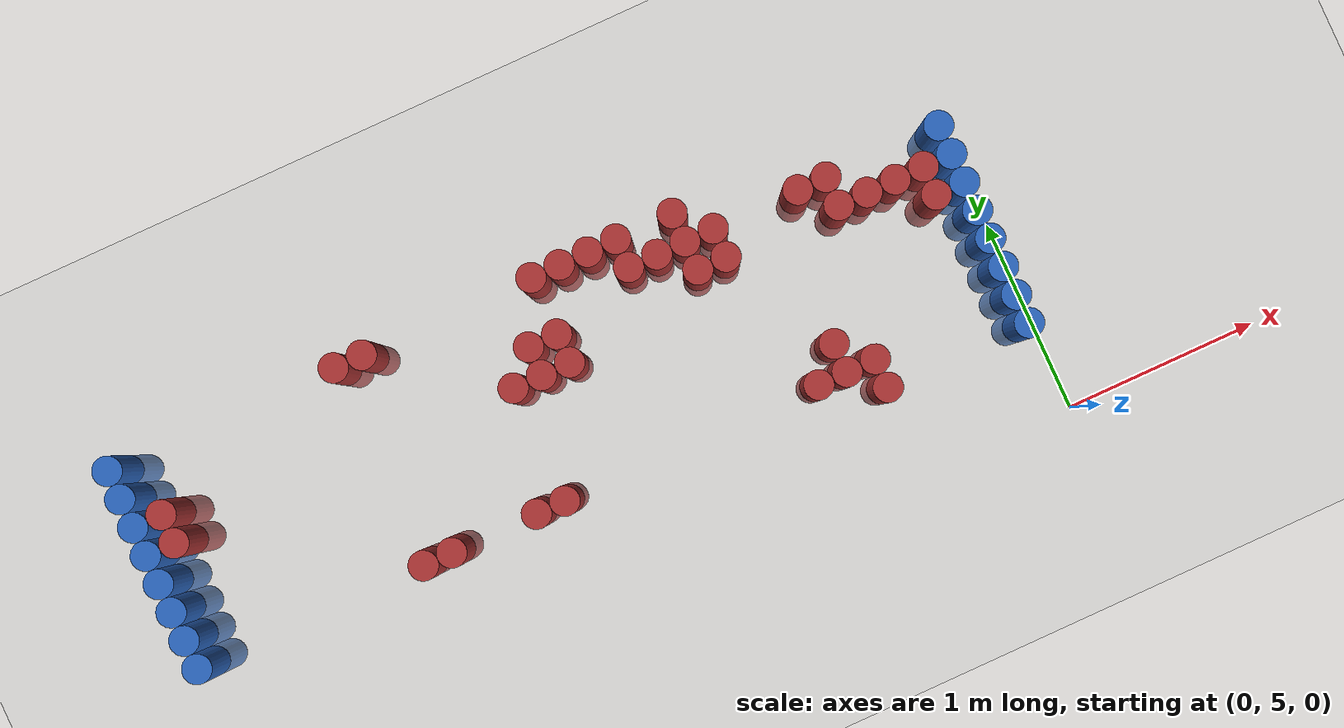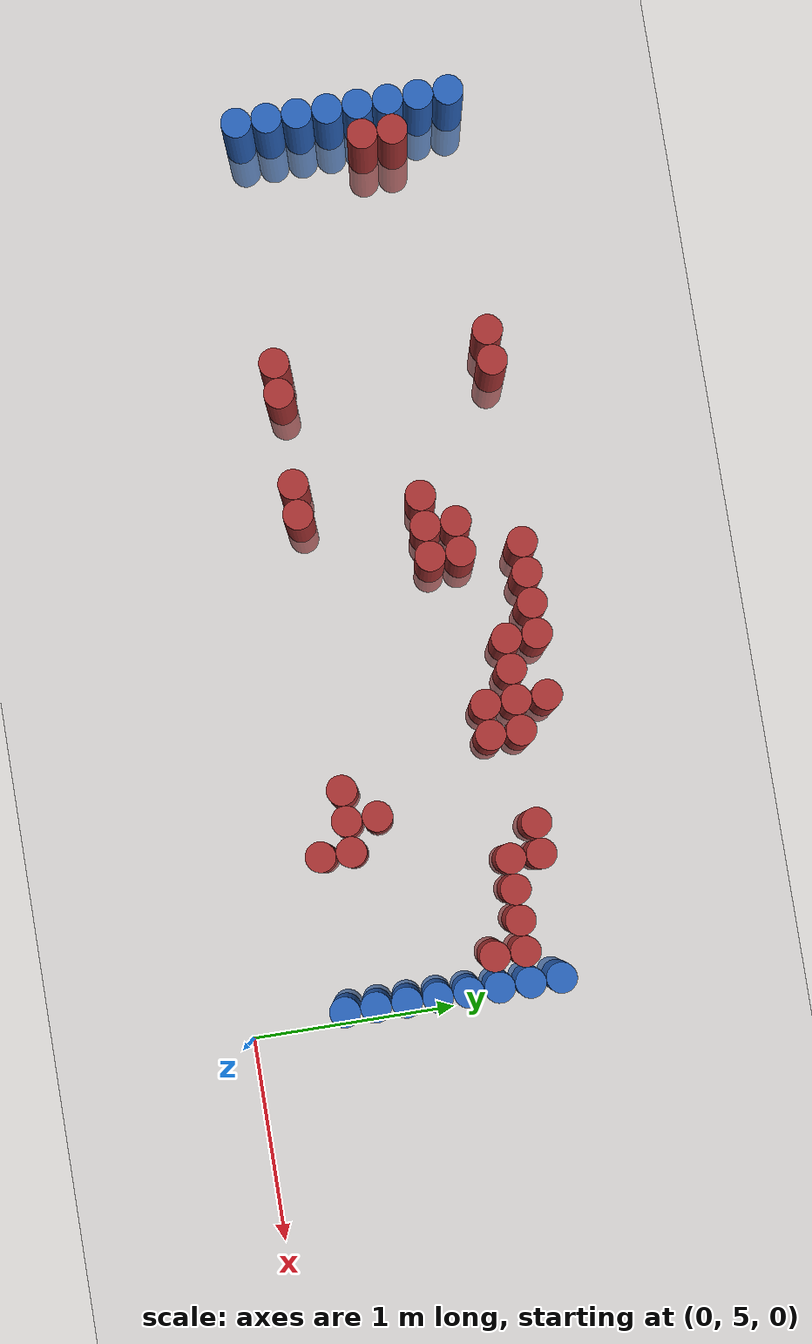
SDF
<sdf version="1.6">
 <world name="default">
  <model name="ground_plane">
   <static>1</static>
   <link name="link">
    <collision name="collision">
     <geometry><plane><normal>0 0 1</normal><size>100 100</size></plane></geometry>
     <surface><friction><ode><mu>100</mu><mu2>50</mu2></ode></friction></surface>
    </collision>
    <visual name="visual">
     <cast_shadows>0</cast_shadows>
     <geometry><plane><normal>0 0 1</normal><size>100 100</size></plane></geometry>
     <material>
      <script><uri>file://media/materials/scripts/gazebo.material</uri><name>Gazebo/Grey</name></script>
     </material>
    </visual>
   </link>
  </model>
  <model name="unit_cylinder_99">
   <static>1</static>
   <pose>-4.425000 5.625000 0.000000 0.000000 0.000000 0.000000</pose>
   <link name="link">
    <inertial>
     <mass>1</mass>
     <inertia><ixx>0.145833</ixx><ixy>0</ixy><ixz>0</ixz><iyy>0.145833</iyy><iyz>0</iyz><izz>0.125</izz></inertia>
    </inertial>
    <collision name="collision">
     <geometry><cylinder><radius>0.075000</radius><length>1</length></cylinder></geometry>
    </collision>
    <visual name="visual">
     <geometry><cylinder><radius>0.075000</radius><length>1</length></cylinder></geometry>
     <material>
      <ambient>0.152000 0.379000 0.720000 1</ambient>
      <diffuse>0.152000 0.379000 0.720000 1</diffuse>
     </material>
     <material>
      <script><name>Gazebo/Grey</name><uri>file://media/materials/scripts/gazebo.material</uri></script>
     </material>
    </visual>
   </link>
  </model>
  <model name="unit_cylinder_100">
   <static>1</static>
   <pose>-4.425000 5.775000 0.000000 0.000000 0.000000 0.000000</pose>
   <link name="link">
    <inertial>
     <mass>1</mass>
     <inertia><ixx>0.145833</ixx><ixy>0</ixy><ixz>0</ixz><iyy>0.145833</iyy><iyz>0</iyz><izz>0.125</izz></inertia>
    </inertial>
    <collision name="collision">
     <geometry><cylinder><radius>0.075000</radius><length>1</length></cylinder></geometry>
    </collision>
    <visual name="visual">
     <geometry><cylinder><radius>0.075000</radius><length>1</length></cylinder></geometry>
     <material>
      <ambient>0.152000 0.379000 0.720000 1</ambient>
      <diffuse>0.152000 0.379000 0.720000 1</diffuse>
     </material>
     <material>
      <script><name>Gazebo/Grey</name><uri>file://media/materials/scripts/gazebo.material</uri></script>
     </material>
    </visual>
   </link>
  </model>
  <model name="unit_cylinder_101">
   <static>1</static>
   <pose>-4.425000 5.925000 0.000000 0.000000 0.000000 0.000000</pose>
   <link name="link">
    <inertial>
     <mass>1</mass>
     <inertia><ixx>0.145833</ixx><ixy>0</ixy><ixz>0</ixz><iyy>0.145833</iyy><iyz>0</iyz><izz>0.125</izz></inertia>
    </inertial>
    <collision name="collision">
     <geometry><cylinder><radius>0.075000</radius><length>1</length></cylinder></geometry>
    </collision>
    <visual name="visual">
     <geometry><cylinder><radius>0.075000</radius><length>1</length></cylinder></geometry>
     <material>
      <ambient>0.152000 0.379000 0.720000 1</ambient>
      <diffuse>0.152000 0.379000 0.720000 1</diffuse>
     </material>
     <material>
      <script><name>Gazebo/Grey</name><uri>file://media/materials/scripts/gazebo.material</uri></script>
     </material>
    </visual>
   </link>
  </model>
  <model name="unit_cylinder_102">
   <static>1</static>
   <pose>-4.425000 6.075000 0.000000 0.000000 0.000000 0.000000</pose>
   <link name="link">
    <inertial>
     <mass>1</mass>
     <inertia><ixx>0.145833</ixx><ixy>0</ixy><ixz>0</ixz><iyy>0.145833</iyy><iyz>0</iyz><izz>0.125</izz></inertia>
    </inertial>
    <collision name="collision">
     <geometry><cylinder><radius>0.075000</radius><length>1</length></cylinder></geometry>
    </collision>
    <visual name="visual">
     <geometry><cylinder><radius>0.075000</radius><length>1</length></cylinder></geometry>
     <material>
      <ambient>0.152000 0.379000 0.720000 1</ambient>
      <diffuse>0.152000 0.379000 0.720000 1</diffuse>
     </material>
     <material>
      <script><name>Gazebo/Grey</name><uri>file://media/materials/scripts/gazebo.material</uri></script>
     </material>
    </visual>
   </link>
  </model>
  <model name="unit_cylinder_103">
   <static>1</static>
   <pose>-4.425000 6.225000 0.000000 0.000000 0.000000 0.000000</pose>
   <link name="link">
    <inertial>
     <mass>1</mass>
     <inertia><ixx>0.145833</ixx><ixy>0</ixy><ixz>0</ixz><iyy>0.145833</iyy><iyz>0</iyz><izz>0.125</izz></inertia>
    </inertial>
    <collision name="collision">
     <geometry><cylinder><radius>0.075000</radius><length>1</length></cylinder></geometry>
    </collision>
    <visual name="visual">
     <geometry><cylinder><radius>0.075000</radius><length>1</length></cylinder></geometry>
     <material>
      <ambient>0.152000 0.379000 0.720000 1</ambient>
      <diffuse>0.152000 0.379000 0.720000 1</diffuse>
     </material>
     <material>
      <script><name>Gazebo/Grey</name><uri>file://media/materials/scripts/gazebo.material</uri></script>
     </material>
    </visual>
   </link>
  </model>
  <model name="unit_cylinder_104">
   <static>1</static>
   <pose>-4.425000 6.375000 0.000000 0.000000 0.000000 0.000000</pose>
   <link name="link">
    <inertial>
     <mass>1</mass>
     <inertia><ixx>0.145833</ixx><ixy>0</ixy><ixz>0</ixz><iyy>0.145833</iyy><iyz>0</iyz><izz>0.125</izz></inertia>
    </inertial>
    <collision name="collision">
     <geometry><cylinder><radius>0.075000</radius><length>1</length></cylinder></geometry>
    </collision>
    <visual name="visual">
     <geometry><cylinder><radius>0.075000</radius><length>1</length></cylinder></geometry>
     <material>
      <ambient>0.152000 0.379000 0.720000 1</ambient>
      <diffuse>0.152000 0.379000 0.720000 1</diffuse>
     </material>
     <material>
      <script><name>Gazebo/Grey</name><uri>file://media/materials/scripts/gazebo.material</uri></script>
     </material>
    </visual>
   </link>
  </model>
  <model name="unit_cylinder_105">
   <static>1</static>
   <pose>-4.425000 6.525000 0.000000 0.000000 0.000000 0.000000</pose>
   <link name="link">
    <inertial>
     <mass>1</mass>
     <inertia><ixx>0.145833</ixx><ixy>0</ixy><ixz>0</ixz><iyy>0.145833</iyy><iyz>0</iyz><izz>0.125</izz></inertia>
    </inertial>
    <collision name="collision">
     <geometry><cylinder><radius>0.075000</radius><length>1</length></cylinder></geometry>
    </collision>
    <visual name="visual">
     <geometry><cylinder><radius>0.075000</radius><length>1</length></cylinder></geometry>
     <material>
      <ambient>0.152000 0.379000 0.720000 1</ambient>
      <diffuse>0.152000 0.379000 0.720000 1</diffuse>
     </material>
     <material>
      <script><name>Gazebo/Grey</name><uri>file://media/materials/scripts/gazebo.material</uri></script>
     </material>
    </visual>
   </link>
  </model>
  <model name="unit_cylinder_106">
   <static>1</static>
   <pose>-4.425000 6.675000 0.000000 0.000000 0.000000 0.000000</pose>
   <link name="link">
    <inertial>
     <mass>1</mass>
     <inertia><ixx>0.145833</ixx><ixy>0</ixy><ixz>0</ixz><iyy>0.145833</iyy><iyz>0</iyz><izz>0.125</izz></inertia>
    </inertial>
    <collision name="collision">
     <geometry><cylinder><radius>0.075000</radius><length>1</length></cylinder></geometry>
    </collision>
    <visual name="visual">
     <geometry><cylinder><radius>0.075000</radius><length>1</length></cylinder></geometry>
     <material>
      <ambient>0.152000 0.379000 0.720000 1</ambient>
      <diffuse>0.152000 0.379000 0.720000 1</diffuse>
     </material>
     <material>
      <script><name>Gazebo/Grey</name><uri>file://media/materials/scripts/gazebo.material</uri></script>
     </material>
    </visual>
   </link>
  </model>
  <model name="unit_cylinder_128">
   <static>1</static>
   <pose>-4.275000 6.225000 0.000000 0.000000 0.000000 0.000000</pose>
   <link name="link">
    <inertial>
     <mass>1</mass>
     <inertia><ixx>0.145833</ixx><ixy>0</ixy><ixz>0</ixz><iyy>0.145833</iyy><iyz>0</iyz><izz>0.125</izz></inertia>
    </inertial>
    <collision name="collision">
     <geometry><cylinder><radius>0.075000</radius><length>1</length></cylinder></geometry>
    </collision>
    <visual name="visual">
     <geometry><cylinder><radius>0.075000</radius><length>1</length></cylinder></geometry>
     <material>
      <ambient>0.648000 0.192000 0.192000 1</ambient>
      <diffuse>0.648000 0.192000 0.192000 1</diffuse>
     </material>
     <material>
      <script><name>Gazebo/Grey</name><uri>file://media/materials/scripts/gazebo.material</uri></script>
     </material>
    </visual>
   </link>
  </model>
  <model name="unit_cylinder_129">
   <static>1</static>
   <pose>-4.275000 6.375000 0.000000 0.000000 0.000000 0.000000</pose>
   <link name="link">
    <inertial>
     <mass>1</mass>
     <inertia><ixx>0.145833</ixx><ixy>0</ixy><ixz>0</ixz><iyy>0.145833</iyy><iyz>0</iyz><izz>0.125</izz></inertia>
    </inertial>
    <collision name="collision">
     <geometry><cylinder><radius>0.075000</radius><length>1</length></cylinder></geometry>
    </collision>
    <visual name="visual">
     <geometry><cylinder><radius>0.075000</radius><length>1</length></cylinder></geometry>
     <material>
      <ambient>0.648000 0.192000 0.192000 1</ambient>
      <diffuse>0.648000 0.192000 0.192000 1</diffuse>
     </material>
     <material>
      <script><name>Gazebo/Grey</name><uri>file://media/materials/scripts/gazebo.material</uri></script>
     </material>
    </visual>
   </link>
  </model>
  <model name="unit_cylinder_146">
   <static>1</static>
   <pose>-3.225000 5.625000 0.000000 0.000000 0.000000 0.000000</pose>
   <link name="link">
    <inertial>
     <mass>1</mass>
     <inertia><ixx>0.145833</ixx><ixy>0</ixy><ixz>0</ixz><iyy>0.145833</iyy><iyz>0</iyz><izz>0.125</izz></inertia>
    </inertial>
    <collision name="collision">
     <geometry><cylinder><radius>0.075000</radius><length>1</length></cylinder></geometry>
    </collision>
    <visual name="visual">
     <geometry><cylinder><radius>0.075000</radius><length>1</length></cylinder></geometry>
     <material>
      <ambient>0.648000 0.192000 0.192000 1</ambient>
      <diffuse>0.648000 0.192000 0.192000 1</diffuse>
     </material>
     <material>
      <script><name>Gazebo/Grey</name><uri>file://media/materials/scripts/gazebo.material</uri></script>
     </material>
    </visual>
   </link>
  </model>
  <model name="unit_cylinder_147">
   <static>1</static>
   <pose>-3.225000 6.675000 0.000000 0.000000 0.000000 0.000000</pose>
   <link name="link">
    <inertial>
     <mass>1</mass>
     <inertia><ixx>0.145833</ixx><ixy>0</ixy><ixz>0</ixz><iyy>0.145833</iyy><iyz>0</iyz><izz>0.125</izz></inertia>
    </inertial>
    <collision name="collision">
     <geometry><cylinder><radius>0.075000</radius><length>1</length></cylinder></geometry>
    </collision>
    <visual name="visual">
     <geometry><cylinder><radius>0.075000</radius><length>1</length></cylinder></geometry>
     <material>
      <ambient>0.648000 0.192000 0.192000 1</ambient>
      <diffuse>0.648000 0.192000 0.192000 1</diffuse>
     </material>
     <material>
      <script><name>Gazebo/Grey</name><uri>file://media/materials/scripts/gazebo.material</uri></script>
     </material>
    </visual>
   </link>
  </model>
  <model name="unit_cylinder_149">
   <static>1</static>
   <pose>-3.075000 5.625000 0.000000 0.000000 0.000000 0.000000</pose>
   <link name="link">
    <inertial>
     <mass>1</mass>
     <inertia><ixx>0.145833</ixx><ixy>0</ixy><ixz>0</ixz><iyy>0.145833</iyy><iyz>0</iyz><izz>0.125</izz></inertia>
    </inertial>
    <collision name="collision">
     <geometry><cylinder><radius>0.075000</radius><length>1</length></cylinder></geometry>
    </collision>
    <visual name="visual">
     <geometry><cylinder><radius>0.075000</radius><length>1</length></cylinder></geometry>
     <material>
      <ambient>0.648000 0.192000 0.192000 1</ambient>
      <diffuse>0.648000 0.192000 0.192000 1</diffuse>
     </material>
     <material>
      <script><name>Gazebo/Grey</name><uri>file://media/materials/scripts/gazebo.material</uri></script>
     </material>
    </visual>
   </link>
  </model>
  <model name="unit_cylinder_150">
   <static>1</static>
   <pose>-3.075000 6.675000 0.000000 0.000000 0.000000 0.000000</pose>
   <link name="link">
    <inertial>
     <mass>1</mass>
     <inertia><ixx>0.145833</ixx><ixy>0</ixy><ixz>0</ixz><iyy>0.145833</iyy><iyz>0</iyz><izz>0.125</izz></inertia>
    </inertial>
    <collision name="collision">
     <geometry><cylinder><radius>0.075000</radius><length>1</length></cylinder></geometry>
    </collision>
    <visual name="visual">
     <geometry><cylinder><radius>0.075000</radius><length>1</length></cylinder></geometry>
     <material>
      <ambient>0.648000 0.192000 0.192000 1</ambient>
      <diffuse>0.648000 0.192000 0.192000 1</diffuse>
     </material>
     <material>
      <script><name>Gazebo/Grey</name><uri>file://media/materials/scripts/gazebo.material</uri></script>
     </material>
    </visual>
   </link>
  </model>
  <model name="unit_cylinder_161">
   <static>1</static>
   <pose>-2.625000 5.625000 0.000000 0.000000 0.000000 0.000000</pose>
   <link name="link">
    <inertial>
     <mass>1</mass>
     <inertia><ixx>0.145833</ixx><ixy>0</ixy><ixz>0</ixz><iyy>0.145833</iyy><iyz>0</iyz><izz>0.125</izz></inertia>
    </inertial>
    <collision name="collision">
     <geometry><cylinder><radius>0.075000</radius><length>1</length></cylinder></geometry>
    </collision>
    <visual name="visual">
     <geometry><cylinder><radius>0.075000</radius><length>1</length></cylinder></geometry>
     <material>
      <ambient>0.648000 0.192000 0.192000 1</ambient>
      <diffuse>0.648000 0.192000 0.192000 1</diffuse>
     </material>
     <material>
      <script><name>Gazebo/Grey</name><uri>file://media/materials/scripts/gazebo.material</uri></script>
     </material>
    </visual>
   </link>
  </model>
  <model name="unit_cylinder_169">
   <static>1</static>
   <pose>-2.475000 5.625000 0.000000 0.000000 0.000000 0.000000</pose>
   <link name="link">
    <inertial>
     <mass>1</mass>
     <inertia><ixx>0.145833</ixx><ixy>0</ixy><ixz>0</ixz><iyy>0.145833</iyy><iyz>0</iyz><izz>0.125</izz></inertia>
    </inertial>
    <collision name="collision">
     <geometry><cylinder><radius>0.075000</radius><length>1</length></cylinder></geometry>
    </collision>
    <visual name="visual">
     <geometry><cylinder><radius>0.075000</radius><length>1</length></cylinder></geometry>
     <material>
      <ambient>0.648000 0.192000 0.192000 1</ambient>
      <diffuse>0.648000 0.192000 0.192000 1</diffuse>
     </material>
     <material>
      <script><name>Gazebo/Grey</name><uri>file://media/materials/scripts/gazebo.material</uri></script>
     </material>
    </visual>
   </link>
  </model>
  <model name="unit_cylinder_170">
   <static>1</static>
   <pose>-2.475000 6.225000 0.000000 0.000000 0.000000 0.000000</pose>
   <link name="link">
    <inertial>
     <mass>1</mass>
     <inertia><ixx>0.145833</ixx><ixy>0</ixy><ixz>0</ixz><iyy>0.145833</iyy><iyz>0</iyz><izz>0.125</izz></inertia>
    </inertial>
    <collision name="collision">
     <geometry><cylinder><radius>0.075000</radius><length>1</length></cylinder></geometry>
    </collision>
    <visual name="visual">
     <geometry><cylinder><radius>0.075000</radius><length>1</length></cylinder></geometry>
     <material>
      <ambient>0.648000 0.192000 0.192000 1</ambient>
      <diffuse>0.648000 0.192000 0.192000 1</diffuse>
     </material>
     <material>
      <script><name>Gazebo/Grey</name><uri>file://media/materials/scripts/gazebo.material</uri></script>
     </material>
    </visual>
   </link>
  </model>
  <model name="unit_cylinder_180">
   <static>1</static>
   <pose>-2.325000 6.225000 0.000000 0.000000 0.000000 0.000000</pose>
   <link name="link">
    <inertial>
     <mass>1</mass>
     <inertia><ixx>0.145833</ixx><ixy>0</ixy><ixz>0</ixz><iyy>0.145833</iyy><iyz>0</iyz><izz>0.125</izz></inertia>
    </inertial>
    <collision name="collision">
     <geometry><cylinder><radius>0.075000</radius><length>1</length></cylinder></geometry>
    </collision>
    <visual name="visual">
     <geometry><cylinder><radius>0.075000</radius><length>1</length></cylinder></geometry>
     <material>
      <ambient>0.648000 0.192000 0.192000 1</ambient>
      <diffuse>0.648000 0.192000 0.192000 1</diffuse>
     </material>
     <material>
      <script><name>Gazebo/Grey</name><uri>file://media/materials/scripts/gazebo.material</uri></script>
     </material>
    </visual>
   </link>
  </model>
  <model name="unit_cylinder_181">
   <static>1</static>
   <pose>-2.325000 6.375000 0.000000 0.000000 0.000000 0.000000</pose>
   <link name="link">
    <inertial>
     <mass>1</mass>
     <inertia><ixx>0.145833</ixx><ixy>0</ixy><ixz>0</ixz><iyy>0.145833</iyy><iyz>0</iyz><izz>0.125</izz></inertia>
    </inertial>
    <collision name="collision">
     <geometry><cylinder><radius>0.075000</radius><length>1</length></cylinder></geometry>
    </collision>
    <visual name="visual">
     <geometry><cylinder><radius>0.075000</radius><length>1</length></cylinder></geometry>
     <material>
      <ambient>0.648000 0.192000 0.192000 1</ambient>
      <diffuse>0.648000 0.192000 0.192000 1</diffuse>
     </material>
     <material>
      <script><name>Gazebo/Grey</name><uri>file://media/materials/scripts/gazebo.material</uri></script>
     </material>
    </visual>
   </link>
  </model>
  <model name="unit_cylinder_189">
   <static>1</static>
   <pose>-2.175000 6.225000 0.000000 0.000000 0.000000 0.000000</pose>
   <link name="link">
    <inertial>
     <mass>1</mass>
     <inertia><ixx>0.145833</ixx><ixy>0</ixy><ixz>0</ixz><iyy>0.145833</iyy><iyz>0</iyz><izz>0.125</izz></inertia>
    </inertial>
    <collision name="collision">
     <geometry><cylinder><radius>0.075000</radius><length>1</length></cylinder></geometry>
    </collision>
    <visual name="visual">
     <geometry><cylinder><radius>0.075000</radius><length>1</length></cylinder></geometry>
     <material>
      <ambient>0.648000 0.192000 0.192000 1</ambient>
      <diffuse>0.648000 0.192000 0.192000 1</diffuse>
     </material>
     <material>
      <script><name>Gazebo/Grey</name><uri>file://media/materials/scripts/gazebo.material</uri></script>
     </material>
    </visual>
   </link>
  </model>
  <model name="unit_cylinder_190">
   <static>1</static>
   <pose>-2.175000 6.375000 0.000000 0.000000 0.000000 0.000000</pose>
   <link name="link">
    <inertial>
     <mass>1</mass>
     <inertia><ixx>0.145833</ixx><ixy>0</ixy><ixz>0</ixz><iyy>0.145833</iyy><iyz>0</iyz><izz>0.125</izz></inertia>
    </inertial>
    <collision name="collision">
     <geometry><cylinder><radius>0.075000</radius><length>1</length></cylinder></geometry>
    </collision>
    <visual name="visual">
     <geometry><cylinder><radius>0.075000</radius><length>1</length></cylinder></geometry>
     <material>
      <ambient>0.648000 0.192000 0.192000 1</ambient>
      <diffuse>0.648000 0.192000 0.192000 1</diffuse>
     </material>
     <material>
      <script><name>Gazebo/Grey</name><uri>file://media/materials/scripts/gazebo.material</uri></script>
     </material>
    </visual>
   </link>
  </model>
  <model name="unit_cylinder_191">
   <static>1</static>
   <pose>-2.175000 6.675000 0.000000 0.000000 0.000000 0.000000</pose>
   <link name="link">
    <inertial>
     <mass>1</mass>
     <inertia><ixx>0.145833</ixx><ixy>0</ixy><ixz>0</ixz><iyy>0.145833</iyy><iyz>0</iyz><izz>0.125</izz></inertia>
    </inertial>
    <collision name="collision">
     <geometry><cylinder><radius>0.075000</radius><length>1</length></cylinder></geometry>
    </collision>
    <visual name="visual">
     <geometry><cylinder><radius>0.075000</radius><length>1</length></cylinder></geometry>
     <material>
      <ambient>0.648000 0.192000 0.192000 1</ambient>
      <diffuse>0.648000 0.192000 0.192000 1</diffuse>
     </material>
     <material>
      <script><name>Gazebo/Grey</name><uri>file://media/materials/scripts/gazebo.material</uri></script>
     </material>
    </visual>
   </link>
  </model>
  <model name="unit_cylinder_196">
   <static>1</static>
   <pose>-2.025000 6.675000 0.000000 0.000000 0.000000 0.000000</pose>
   <link name="link">
    <inertial>
     <mass>1</mass>
     <inertia><ixx>0.145833</ixx><ixy>0</ixy><ixz>0</ixz><iyy>0.145833</iyy><iyz>0</iyz><izz>0.125</izz></inertia>
    </inertial>
    <collision name="collision">
     <geometry><cylinder><radius>0.075000</radius><length>1</length></cylinder></geometry>
    </collision>
    <visual name="visual">
     <geometry><cylinder><radius>0.075000</radius><length>1</length></cylinder></geometry>
     <material>
      <ambient>0.648000 0.192000 0.192000 1</ambient>
      <diffuse>0.648000 0.192000 0.192000 1</diffuse>
     </material>
     <material>
      <script><name>Gazebo/Grey</name><uri>file://media/materials/scripts/gazebo.material</uri></script>
     </material>
    </visual>
   </link>
  </model>
  <model name="unit_cylinder_198">
   <static>1</static>
   <pose>-1.875000 6.675000 0.000000 0.000000 0.000000 0.000000</pose>
   <link name="link">
    <inertial>
     <mass>1</mass>
     <inertia><ixx>0.145833</ixx><ixy>0</ixy><ixz>0</ixz><iyy>0.145833</iyy><iyz>0</iyz><izz>0.125</izz></inertia>
    </inertial>
    <collision name="collision">
     <geometry><cylinder><radius>0.075000</radius><length>1</length></cylinder></geometry>
    </collision>
    <visual name="visual">
     <geometry><cylinder><radius>0.075000</radius><length>1</length></cylinder></geometry>
     <material>
      <ambient>0.648000 0.192000 0.192000 1</ambient>
      <diffuse>0.648000 0.192000 0.192000 1</diffuse>
     </material>
     <material>
      <script><name>Gazebo/Grey</name><uri>file://media/materials/scripts/gazebo.material</uri></script>
     </material>
    </visual>
   </link>
  </model>
  <model name="unit_cylinder_200">
   <static>1</static>
   <pose>-1.725000 6.525000 0.000000 0.000000 0.000000 0.000000</pose>
   <link name="link">
    <inertial>
     <mass>1</mass>
     <inertia><ixx>0.145833</ixx><ixy>0</ixy><ixz>0</ixz><iyy>0.145833</iyy><iyz>0</iyz><izz>0.125</izz></inertia>
    </inertial>
    <collision name="collision">
     <geometry><cylinder><radius>0.075000</radius><length>1</length></cylinder></geometry>
    </collision>
    <visual name="visual">
     <geometry><cylinder><radius>0.075000</radius><length>1</length></cylinder></geometry>
     <material>
      <ambient>0.648000 0.192000 0.192000 1</ambient>
      <diffuse>0.648000 0.192000 0.192000 1</diffuse>
     </material>
     <material>
      <script><name>Gazebo/Grey</name><uri>file://media/materials/scripts/gazebo.material</uri></script>
     </material>
    </visual>
   </link>
  </model>
  <model name="unit_cylinder_201">
   <static>1</static>
   <pose>-1.725000 6.675000 0.000000 0.000000 0.000000 0.000000</pose>
   <link name="link">
    <inertial>
     <mass>1</mass>
     <inertia><ixx>0.145833</ixx><ixy>0</ixy><ixz>0</ixz><iyy>0.145833</iyy><iyz>0</iyz><izz>0.125</izz></inertia>
    </inertial>
    <collision name="collision">
     <geometry><cylinder><radius>0.075000</radius><length>1</length></cylinder></geometry>
    </collision>
    <visual name="visual">
     <geometry><cylinder><radius>0.075000</radius><length>1</length></cylinder></geometry>
     <material>
      <ambient>0.648000 0.192000 0.192000 1</ambient>
      <diffuse>0.648000 0.192000 0.192000 1</diffuse>
     </material>
     <material>
      <script><name>Gazebo/Grey</name><uri>file://media/materials/scripts/gazebo.material</uri></script>
     </material>
    </visual>
   </link>
  </model>
  <model name="unit_cylinder_207">
   <static>1</static>
   <pose>-1.575000 6.525000 0.000000 0.000000 0.000000 0.000000</pose>
   <link name="link">
    <inertial>
     <mass>1</mass>
     <inertia><ixx>0.145833</ixx><ixy>0</ixy><ixz>0</ixz><iyy>0.145833</iyy><iyz>0</iyz><izz>0.125</izz></inertia>
    </inertial>
    <collision name="collision">
     <geometry><cylinder><radius>0.075000</radius><length>1</length></cylinder></geometry>
    </collision>
    <visual name="visual">
     <geometry><cylinder><radius>0.075000</radius><length>1</length></cylinder></geometry>
     <material>
      <ambient>0.648000 0.192000 0.192000 1</ambient>
      <diffuse>0.648000 0.192000 0.192000 1</diffuse>
     </material>
     <material>
      <script><name>Gazebo/Grey</name><uri>file://media/materials/scripts/gazebo.material</uri></script>
     </material>
    </visual>
   </link>
  </model>
  <model name="unit_cylinder_214">
   <static>1</static>
   <pose>-1.425000 6.375000 0.000000 0.000000 0.000000 0.000000</pose>
   <link name="link">
    <inertial>
     <mass>1</mass>
     <inertia><ixx>0.145833</ixx><ixy>0</ixy><ixz>0</ixz><iyy>0.145833</iyy><iyz>0</iyz><izz>0.125</izz></inertia>
    </inertial>
    <collision name="collision">
     <geometry><cylinder><radius>0.075000</radius><length>1</length></cylinder></geometry>
    </collision>
    <visual name="visual">
     <geometry><cylinder><radius>0.075000</radius><length>1</length></cylinder></geometry>
     <material>
      <ambient>0.648000 0.192000 0.192000 1</ambient>
      <diffuse>0.648000 0.192000 0.192000 1</diffuse>
     </material>
     <material>
      <script><name>Gazebo/Grey</name><uri>file://media/materials/scripts/gazebo.material</uri></script>
     </material>
    </visual>
   </link>
  </model>
  <model name="unit_cylinder_215">
   <static>1</static>
   <pose>-1.425000 6.525000 0.000000 0.000000 0.000000 0.000000</pose>
   <link name="link">
    <inertial>
     <mass>1</mass>
     <inertia><ixx>0.145833</ixx><ixy>0</ixy><ixz>0</ixz><iyy>0.145833</iyy><iyz>0</iyz><izz>0.125</izz></inertia>
    </inertial>
    <collision name="collision">
     <geometry><cylinder><radius>0.075000</radius><length>1</length></cylinder></geometry>
    </collision>
    <visual name="visual">
     <geometry><cylinder><radius>0.075000</radius><length>1</length></cylinder></geometry>
     <material>
      <ambient>0.648000 0.192000 0.192000 1</ambient>
      <diffuse>0.648000 0.192000 0.192000 1</diffuse>
     </material>
     <material>
      <script><name>Gazebo/Grey</name><uri>file://media/materials/scripts/gazebo.material</uri></script>
     </material>
    </visual>
   </link>
  </model>
  <model name="unit_cylinder_216">
   <static>1</static>
   <pose>-1.425000 6.675000 0.000000 0.000000 0.000000 0.000000</pose>
   <link name="link">
    <inertial>
     <mass>1</mass>
     <inertia><ixx>0.145833</ixx><ixy>0</ixy><ixz>0</ixz><iyy>0.145833</iyy><iyz>0</iyz><izz>0.125</izz></inertia>
    </inertial>
    <collision name="collision">
     <geometry><cylinder><radius>0.075000</radius><length>1</length></cylinder></geometry>
    </collision>
    <visual name="visual">
     <geometry><cylinder><radius>0.075000</radius><length>1</length></cylinder></geometry>
     <material>
      <ambient>0.648000 0.192000 0.192000 1</ambient>
      <diffuse>0.648000 0.192000 0.192000 1</diffuse>
     </material>
     <material>
      <script><name>Gazebo/Grey</name><uri>file://media/materials/scripts/gazebo.material</uri></script>
     </material>
    </visual>
   </link>
  </model>
  <model name="unit_cylinder_222">
   <static>1</static>
   <pose>-1.275000 6.375000 0.000000 0.000000 0.000000 0.000000</pose>
   <link name="link">
    <inertial>
     <mass>1</mass>
     <inertia><ixx>0.145833</ixx><ixy>0</ixy><ixz>0</ixz><iyy>0.145833</iyy><iyz>0</iyz><izz>0.125</izz></inertia>
    </inertial>
    <collision name="collision">
     <geometry><cylinder><radius>0.075000</radius><length>1</length></cylinder></geometry>
    </collision>
    <visual name="visual">
     <geometry><cylinder><radius>0.075000</radius><length>1</length></cylinder></geometry>
     <material>
      <ambient>0.648000 0.192000 0.192000 1</ambient>
      <diffuse>0.648000 0.192000 0.192000 1</diffuse>
     </material>
     <material>
      <script><name>Gazebo/Grey</name><uri>file://media/materials/scripts/gazebo.material</uri></script>
     </material>
    </visual>
   </link>
  </model>
  <model name="unit_cylinder_223">
   <static>1</static>
   <pose>-1.275000 6.525000 0.000000 0.000000 0.000000 0.000000</pose>
   <link name="link">
    <inertial>
     <mass>1</mass>
     <inertia><ixx>0.145833</ixx><ixy>0</ixy><ixz>0</ixz><iyy>0.145833</iyy><iyz>0</iyz><izz>0.125</izz></inertia>
    </inertial>
    <collision name="collision">
     <geometry><cylinder><radius>0.075000</radius><length>1</length></cylinder></geometry>
    </collision>
    <visual name="visual">
     <geometry><cylinder><radius>0.075000</radius><length>1</length></cylinder></geometry>
     <material>
      <ambient>0.648000 0.192000 0.192000 1</ambient>
      <diffuse>0.648000 0.192000 0.192000 1</diffuse>
     </material>
     <material>
      <script><name>Gazebo/Grey</name><uri>file://media/materials/scripts/gazebo.material</uri></script>
     </material>
    </visual>
   </link>
  </model>
  <model name="unit_cylinder_228">
   <static>1</static>
   <pose>-1.125000 5.625000 0.000000 0.000000 0.000000 0.000000</pose>
   <link name="link">
    <inertial>
     <mass>1</mass>
     <inertia><ixx>0.145833</ixx><ixy>0</ixy><ixz>0</ixz><iyy>0.145833</iyy><iyz>0</iyz><izz>0.125</izz></inertia>
    </inertial>
    <collision name="collision">
     <geometry><cylinder><radius>0.075000</radius><length>1</length></cylinder></geometry>
    </collision>
    <visual name="visual">
     <geometry><cylinder><radius>0.075000</radius><length>1</length></cylinder></geometry>
     <material>
      <ambient>0.648000 0.192000 0.192000 1</ambient>
      <diffuse>0.648000 0.192000 0.192000 1</diffuse>
     </material>
     <material>
      <script><name>Gazebo/Grey</name><uri>file://media/materials/scripts/gazebo.material</uri></script>
     </material>
    </visual>
   </link>
  </model>
  <model name="unit_cylinder_237">
   <static>1</static>
   <pose>-0.975000 5.625000 0.000000 0.000000 0.000000 0.000000</pose>
   <link name="link">
    <inertial>
     <mass>1</mass>
     <inertia><ixx>0.145833</ixx><ixy>0</ixy><ixz>0</ixz><iyy>0.145833</iyy><iyz>0</iyz><izz>0.125</izz></inertia>
    </inertial>
    <collision name="collision">
     <geometry><cylinder><radius>0.075000</radius><length>1</length></cylinder></geometry>
    </collision>
    <visual name="visual">
     <geometry><cylinder><radius>0.075000</radius><length>1</length></cylinder></geometry>
     <material>
      <ambient>0.648000 0.192000 0.192000 1</ambient>
      <diffuse>0.648000 0.192000 0.192000 1</diffuse>
     </material>
     <material>
      <script><name>Gazebo/Grey</name><uri>file://media/materials/scripts/gazebo.material</uri></script>
     </material>
    </visual>
   </link>
  </model>
  <model name="unit_cylinder_238">
   <static>1</static>
   <pose>-0.975000 5.775000 0.000000 0.000000 0.000000 0.000000</pose>
   <link name="link">
    <inertial>
     <mass>1</mass>
     <inertia><ixx>0.145833</ixx><ixy>0</ixy><ixz>0</ixz><iyy>0.145833</iyy><iyz>0</iyz><izz>0.125</izz></inertia>
    </inertial>
    <collision name="collision">
     <geometry><cylinder><radius>0.075000</radius><length>1</length></cylinder></geometry>
    </collision>
    <visual name="visual">
     <geometry><cylinder><radius>0.075000</radius><length>1</length></cylinder></geometry>
     <material>
      <ambient>0.648000 0.192000 0.192000 1</ambient>
      <diffuse>0.648000 0.192000 0.192000 1</diffuse>
     </material>
     <material>
      <script><name>Gazebo/Grey</name><uri>file://media/materials/scripts/gazebo.material</uri></script>
     </material>
    </visual>
   </link>
  </model>
  <model name="unit_cylinder_247">
   <static>1</static>
   <pose>-0.825000 5.475000 0.000000 0.000000 0.000000 0.000000</pose>
   <link name="link">
    <inertial>
     <mass>1</mass>
     <inertia><ixx>0.145833</ixx><ixy>0</ixy><ixz>0</ixz><iyy>0.145833</iyy><iyz>0</iyz><izz>0.125</izz></inertia>
    </inertial>
    <collision name="collision">
     <geometry><cylinder><radius>0.075000</radius><length>1</length></cylinder></geometry>
    </collision>
    <visual name="visual">
     <geometry><cylinder><radius>0.075000</radius><length>1</length></cylinder></geometry>
     <material>
      <ambient>0.648000 0.192000 0.192000 1</ambient>
      <diffuse>0.648000 0.192000 0.192000 1</diffuse>
     </material>
     <material>
      <script><name>Gazebo/Grey</name><uri>file://media/materials/scripts/gazebo.material</uri></script>
     </material>
    </visual>
   </link>
  </model>
  <model name="unit_cylinder_248">
   <static>1</static>
   <pose>-0.825000 5.625000 0.000000 0.000000 0.000000 0.000000</pose>
   <link name="link">
    <inertial>
     <mass>1</mass>
     <inertia><ixx>0.145833</ixx><ixy>0</ixy><ixz>0</ixz><iyy>0.145833</iyy><iyz>0</iyz><izz>0.125</izz></inertia>
    </inertial>
    <collision name="collision">
     <geometry><cylinder><radius>0.075000</radius><length>1</length></cylinder></geometry>
    </collision>
    <visual name="visual">
     <geometry><cylinder><radius>0.075000</radius><length>1</length></cylinder></geometry>
     <material>
      <ambient>0.648000 0.192000 0.192000 1</ambient>
      <diffuse>0.648000 0.192000 0.192000 1</diffuse>
     </material>
     <material>
      <script><name>Gazebo/Grey</name><uri>file://media/materials/scripts/gazebo.material</uri></script>
     </material>
    </visual>
   </link>
  </model>
  <model name="unit_cylinder_249">
   <static>1</static>
   <pose>-0.825000 6.525000 0.000000 0.000000 0.000000 0.000000</pose>
   <link name="link">
    <inertial>
     <mass>1</mass>
     <inertia><ixx>0.145833</ixx><ixy>0</ixy><ixz>0</ixz><iyy>0.145833</iyy><iyz>0</iyz><izz>0.125</izz></inertia>
    </inertial>
    <collision name="collision">
     <geometry><cylinder><radius>0.075000</radius><length>1</length></cylinder></geometry>
    </collision>
    <visual name="visual">
     <geometry><cylinder><radius>0.075000</radius><length>1</length></cylinder></geometry>
     <material>
      <ambient>0.648000 0.192000 0.192000 1</ambient>
      <diffuse>0.648000 0.192000 0.192000 1</diffuse>
     </material>
     <material>
      <script><name>Gazebo/Grey</name><uri>file://media/materials/scripts/gazebo.material</uri></script>
     </material>
    </visual>
   </link>
  </model>
  <model name="unit_cylinder_257">
   <static>1</static>
   <pose>-0.675000 6.375000 0.000000 0.000000 0.000000 0.000000</pose>
   <link name="link">
    <inertial>
     <mass>1</mass>
     <inertia><ixx>0.145833</ixx><ixy>0</ixy><ixz>0</ixz><iyy>0.145833</iyy><iyz>0</iyz><izz>0.125</izz></inertia>
    </inertial>
    <collision name="collision">
     <geometry><cylinder><radius>0.075000</radius><length>1</length></cylinder></geometry>
    </collision>
    <visual name="visual">
     <geometry><cylinder><radius>0.075000</radius><length>1</length></cylinder></geometry>
     <material>
      <ambient>0.648000 0.192000 0.192000 1</ambient>
      <diffuse>0.648000 0.192000 0.192000 1</diffuse>
     </material>
     <material>
      <script><name>Gazebo/Grey</name><uri>file://media/materials/scripts/gazebo.material</uri></script>
     </material>
    </visual>
   </link>
  </model>
  <model name="unit_cylinder_258">
   <static>1</static>
   <pose>-0.675000 6.525000 0.000000 0.000000 0.000000 0.000000</pose>
   <link name="link">
    <inertial>
     <mass>1</mass>
     <inertia><ixx>0.145833</ixx><ixy>0</ixy><ixz>0</ixz><iyy>0.145833</iyy><iyz>0</iyz><izz>0.125</izz></inertia>
    </inertial>
    <collision name="collision">
     <geometry><cylinder><radius>0.075000</radius><length>1</length></cylinder></geometry>
    </collision>
    <visual name="visual">
     <geometry><cylinder><radius>0.075000</radius><length>1</length></cylinder></geometry>
     <material>
      <ambient>0.648000 0.192000 0.192000 1</ambient>
      <diffuse>0.648000 0.192000 0.192000 1</diffuse>
     </material>
     <material>
      <script><name>Gazebo/Grey</name><uri>file://media/materials/scripts/gazebo.material</uri></script>
     </material>
    </visual>
   </link>
  </model>
  <model name="unit_cylinder_263">
   <static>1</static>
   <pose>-0.525000 6.375000 0.000000 0.000000 0.000000 0.000000</pose>
   <link name="link">
    <inertial>
     <mass>1</mass>
     <inertia><ixx>0.145833</ixx><ixy>0</ixy><ixz>0</ixz><iyy>0.145833</iyy><iyz>0</iyz><izz>0.125</izz></inertia>
    </inertial>
    <collision name="collision">
     <geometry><cylinder><radius>0.075000</radius><length>1</length></cylinder></geometry>
    </collision>
    <visual name="visual">
     <geometry><cylinder><radius>0.075000</radius><length>1</length></cylinder></geometry>
     <material>
      <ambient>0.648000 0.192000 0.192000 1</ambient>
      <diffuse>0.648000 0.192000 0.192000 1</diffuse>
     </material>
     <material>
      <script><name>Gazebo/Grey</name><uri>file://media/materials/scripts/gazebo.material</uri></script>
     </material>
    </visual>
   </link>
  </model>
  <model name="unit_cylinder_269">
   <static>1</static>
   <pose>-0.375000 6.375000 0.000000 0.000000 0.000000 0.000000</pose>
   <link name="link">
    <inertial>
     <mass>1</mass>
     <inertia><ixx>0.145833</ixx><ixy>0</ixy><ixz>0</ixz><iyy>0.145833</iyy><iyz>0</iyz><izz>0.125</izz></inertia>
    </inertial>
    <collision name="collision">
     <geometry><cylinder><radius>0.075000</radius><length>1</length></cylinder></geometry>
    </collision>
    <visual name="visual">
     <geometry><cylinder><radius>0.075000</radius><length>1</length></cylinder></geometry>
     <material>
      <ambient>0.648000 0.192000 0.192000 1</ambient>
      <diffuse>0.648000 0.192000 0.192000 1</diffuse>
     </material>
     <material>
      <script><name>Gazebo/Grey</name><uri>file://media/materials/scripts/gazebo.material</uri></script>
     </material>
    </visual>
   </link>
  </model>
  <model name="unit_cylinder_274">
   <static>1</static>
   <pose>-0.225000 6.225000 0.000000 0.000000 0.000000 0.000000</pose>
   <link name="link">
    <inertial>
     <mass>1</mass>
     <inertia><ixx>0.145833</ixx><ixy>0</ixy><ixz>0</ixz><iyy>0.145833</iyy><iyz>0</iyz><izz>0.125</izz></inertia>
    </inertial>
    <collision name="collision">
     <geometry><cylinder><radius>0.075000</radius><length>1</length></cylinder></geometry>
    </collision>
    <visual name="visual">
     <geometry><cylinder><radius>0.075000</radius><length>1</length></cylinder></geometry>
     <material>
      <ambient>0.648000 0.192000 0.192000 1</ambient>
      <diffuse>0.648000 0.192000 0.192000 1</diffuse>
     </material>
     <material>
      <script><name>Gazebo/Grey</name><uri>file://media/materials/scripts/gazebo.material</uri></script>
     </material>
    </visual>
   </link>
  </model>
  <model name="unit_cylinder_275">
   <static>1</static>
   <pose>-0.225000 6.375000 0.000000 0.000000 0.000000 0.000000</pose>
   <link name="link">
    <inertial>
     <mass>1</mass>
     <inertia><ixx>0.145833</ixx><ixy>0</ixy><ixz>0</ixz><iyy>0.145833</iyy><iyz>0</iyz><izz>0.125</izz></inertia>
    </inertial>
    <collision name="collision">
     <geometry><cylinder><radius>0.075000</radius><length>1</length></cylinder></geometry>
    </collision>
    <visual name="visual">
     <geometry><cylinder><radius>0.075000</radius><length>1</length></cylinder></geometry>
     <material>
      <ambient>0.648000 0.192000 0.192000 1</ambient>
      <diffuse>0.648000 0.192000 0.192000 1</diffuse>
     </material>
     <material>
      <script><name>Gazebo/Grey</name><uri>file://media/materials/scripts/gazebo.material</uri></script>
     </material>
    </visual>
   </link>
  </model>
  <model name="unit_cylinder_286">
   <static>1</static>
   <pose>-0.075000 5.475000 0.000000 0.000000 0.000000 0.000000</pose>
   <link name="link">
    <inertial>
     <mass>1</mass>
     <inertia><ixx>0.145833</ixx><ixy>0</ixy><ixz>0</ixz><iyy>0.145833</iyy><iyz>0</iyz><izz>0.125</izz></inertia>
    </inertial>
    <collision name="collision">
     <geometry><cylinder><radius>0.075000</radius><length>1</length></cylinder></geometry>
    </collision>
    <visual name="visual">
     <geometry><cylinder><radius>0.075000</radius><length>1</length></cylinder></geometry>
     <material>
      <ambient>0.152000 0.379000 0.720000 1</ambient>
      <diffuse>0.152000 0.379000 0.720000 1</diffuse>
     </material>
     <material>
      <script><name>Gazebo/Grey</name><uri>file://media/materials/scripts/gazebo.material</uri></script>
     </material>
    </visual>
   </link>
  </model>
  <model name="unit_cylinder_287">
   <static>1</static>
   <pose>-0.075000 5.625000 0.000000 0.000000 0.000000 0.000000</pose>
   <link name="link">
    <inertial>
     <mass>1</mass>
     <inertia><ixx>0.145833</ixx><ixy>0</ixy><ixz>0</ixz><iyy>0.145833</iyy><iyz>0</iyz><izz>0.125</izz></inertia>
    </inertial>
    <collision name="collision">
     <geometry><cylinder><radius>0.075000</radius><length>1</length></cylinder></geometry>
    </collision>
    <visual name="visual">
     <geometry><cylinder><radius>0.075000</radius><length>1</length></cylinder></geometry>
     <material>
      <ambient>0.152000 0.379000 0.720000 1</ambient>
      <diffuse>0.152000 0.379000 0.720000 1</diffuse>
     </material>
     <material>
      <script><name>Gazebo/Grey</name><uri>file://media/materials/scripts/gazebo.material</uri></script>
     </material>
    </visual>
   </link>
  </model>
  <model name="unit_cylinder_288">
   <static>1</static>
   <pose>-0.075000 5.775000 0.000000 0.000000 0.000000 0.000000</pose>
   <link name="link">
    <inertial>
     <mass>1</mass>
     <inertia><ixx>0.145833</ixx><ixy>0</ixy><ixz>0</ixz><iyy>0.145833</iyy><iyz>0</iyz><izz>0.125</izz></inertia>
    </inertial>
    <collision name="collision">
     <geometry><cylinder><radius>0.075000</radius><length>1</length></cylinder></geometry>
    </collision>
    <visual name="visual">
     <geometry><cylinder><radius>0.075000</radius><length>1</length></cylinder></geometry>
     <material>
      <ambient>0.152000 0.379000 0.720000 1</ambient>
      <diffuse>0.152000 0.379000 0.720000 1</diffuse>
     </material>
     <material>
      <script><name>Gazebo/Grey</name><uri>file://media/materials/scripts/gazebo.material</uri></script>
     </material>
    </visual>
   </link>
  </model>
  <model name="unit_cylinder_289">
   <static>1</static>
   <pose>-0.075000 5.925000 0.000000 0.000000 0.000000 0.000000</pose>
   <link name="link">
    <inertial>
     <mass>1</mass>
     <inertia><ixx>0.145833</ixx><ixy>0</ixy><ixz>0</ixz><iyy>0.145833</iyy><iyz>0</iyz><izz>0.125</izz></inertia>
    </inertial>
    <collision name="collision">
     <geometry><cylinder><radius>0.075000</radius><length>1</length></cylinder></geometry>
    </collision>
    <visual name="visual">
     <geometry><cylinder><radius>0.075000</radius><length>1</length></cylinder></geometry>
     <material>
      <ambient>0.152000 0.379000 0.720000 1</ambient>
      <diffuse>0.152000 0.379000 0.720000 1</diffuse>
     </material>
     <material>
      <script><name>Gazebo/Grey</name><uri>file://media/materials/scripts/gazebo.material</uri></script>
     </material>
    </visual>
   </link>
  </model>
  <model name="unit_cylinder_290">
   <static>1</static>
   <pose>-0.075000 6.075000 0.000000 0.000000 0.000000 0.000000</pose>
   <link name="link">
    <inertial>
     <mass>1</mass>
     <inertia><ixx>0.145833</ixx><ixy>0</ixy><ixz>0</ixz><iyy>0.145833</iyy><iyz>0</iyz><izz>0.125</izz></inertia>
    </inertial>
    <collision name="collision">
     <geometry><cylinder><radius>0.075000</radius><length>1</length></cylinder></geometry>
    </collision>
    <visual name="visual">
     <geometry><cylinder><radius>0.075000</radius><length>1</length></cylinder></geometry>
     <material>
      <ambient>0.152000 0.379000 0.720000 1</ambient>
      <diffuse>0.152000 0.379000 0.720000 1</diffuse>
     </material>
     <material>
      <script><name>Gazebo/Grey</name><uri>file://media/materials/scripts/gazebo.material</uri></script>
     </material>
    </visual>
   </link>
  </model>
  <model name="unit_cylinder_291">
   <static>1</static>
   <pose>-0.075000 6.225000 0.000000 0.000000 0.000000 0.000000</pose>
   <link name="link">
    <inertial>
     <mass>1</mass>
     <inertia><ixx>0.145833</ixx><ixy>0</ixy><ixz>0</ixz><iyy>0.145833</iyy><iyz>0</iyz><izz>0.125</izz></inertia>
    </inertial>
    <collision name="collision">
     <geometry><cylinder><radius>0.075000</radius><length>1</length></cylinder></geometry>
    </collision>
    <visual name="visual">
     <geometry><cylinder><radius>0.075000</radius><length>1</length></cylinder></geometry>
     <material>
      <ambient>0.152000 0.379000 0.720000 1</ambient>
      <diffuse>0.152000 0.379000 0.720000 1</diffuse>
     </material>
     <material>
      <script><name>Gazebo/Grey</name><uri>file://media/materials/scripts/gazebo.material</uri></script>
     </material>
    </visual>
   </link>
  </model>
  <model name="unit_cylinder_292">
   <static>1</static>
   <pose>-0.075000 6.375000 0.000000 0.000000 0.000000 0.000000</pose>
   <link name="link">
    <inertial>
     <mass>1</mass>
     <inertia><ixx>0.145833</ixx><ixy>0</ixy><ixz>0</ixz><iyy>0.145833</iyy><iyz>0</iyz><izz>0.125</izz></inertia>
    </inertial>
    <collision name="collision">
     <geometry><cylinder><radius>0.075000</radius><length>1</length></cylinder></geometry>
    </collision>
    <visual name="visual">
     <geometry><cylinder><radius>0.075000</radius><length>1</length></cylinder></geometry>
     <material>
      <ambient>0.152000 0.379000 0.720000 1</ambient>
      <diffuse>0.152000 0.379000 0.720000 1</diffuse>
     </material>
     <material>
      <script><name>Gazebo/Grey</name><uri>file://media/materials/scripts/gazebo.material</uri></script>
     </material>
    </visual>
   </link>
  </model>
  <model name="unit_cylinder_293">
   <static>1</static>
   <pose>-0.075000 6.525000 0.000000 0.000000 0.000000 0.000000</pose>
   <link name="link">
    <inertial>
     <mass>1</mass>
     <inertia><ixx>0.145833</ixx><ixy>0</ixy><ixz>0</ixz><iyy>0.145833</iyy><iyz>0</iyz><izz>0.125</izz></inertia>
    </inertial>
    <collision name="collision">
     <geometry><cylinder><radius>0.075000</radius><length>1</length></cylinder></geometry>
    </collision>
    <visual name="visual">
     <geometry><cylinder><radius>0.075000</radius><length>1</length></cylinder></geometry>
     <material>
      <ambient>0.152000 0.379000 0.720000 1</ambient>
      <diffuse>0.152000 0.379000 0.720000 1</diffuse>
     </material>
     <material>
      <script><name>Gazebo/Grey</name><uri>file://media/materials/scripts/gazebo.material</uri></script>
     </material>
    </visual>
   </link>
  </model>
 </world>
</sdf>
